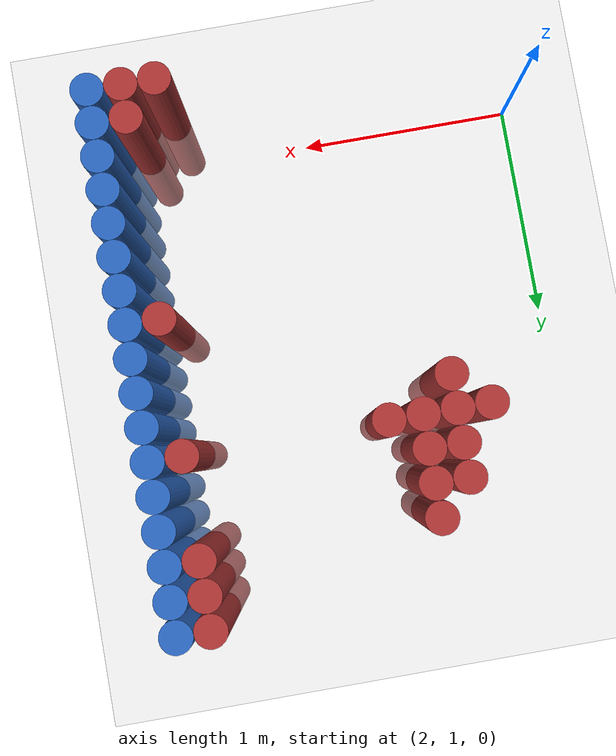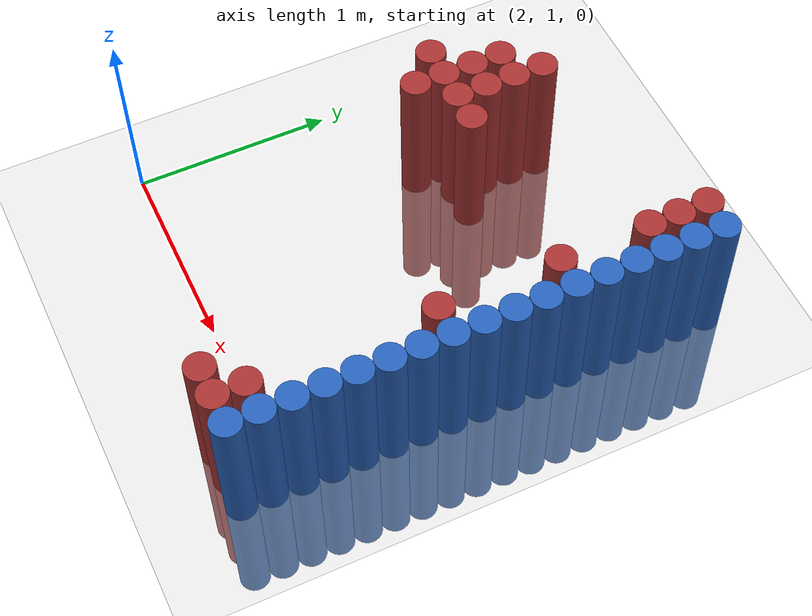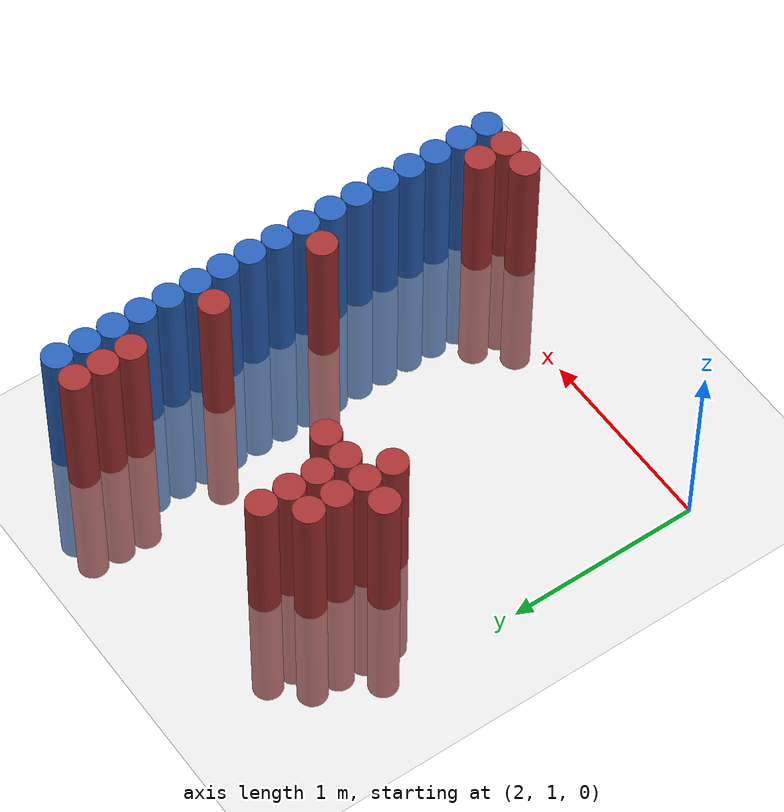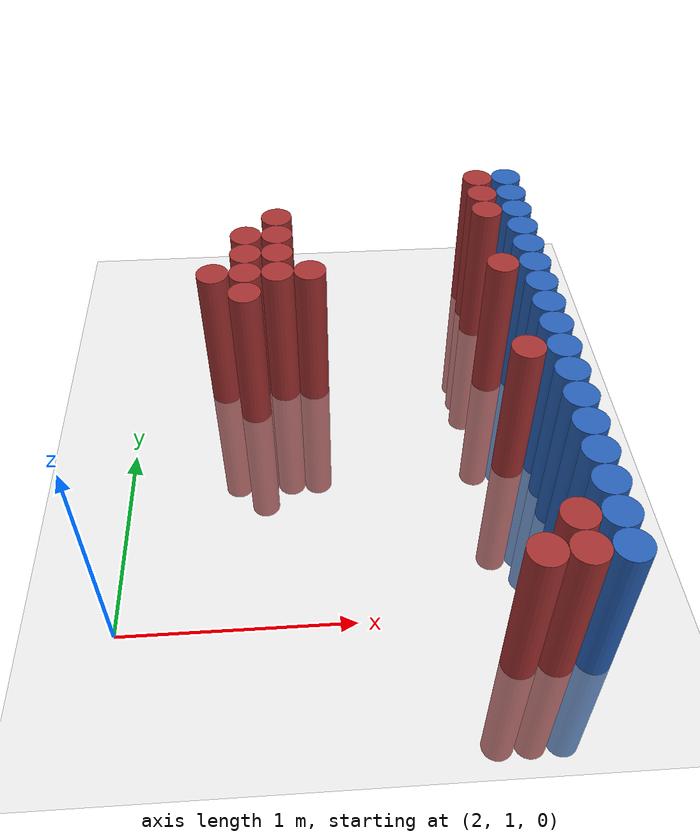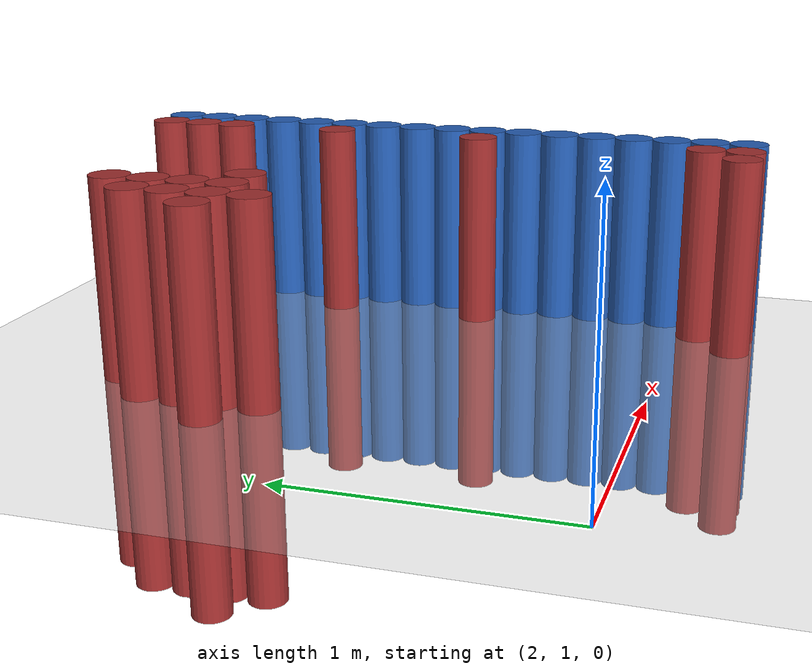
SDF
<sdf version="1.6">
 <world name="default">
  <model name="ground_plane">
   <static>1</static>
   <link name="link">
    <collision name="collision">
     <geometry><plane><normal>0 0 1</normal><size>100 100</size></plane></geometry>
     <surface><friction><ode><mu>100</mu><mu2>50</mu2></ode></friction></surface>
    </collision>
    <visual name="visual">
     <cast_shadows>0</cast_shadows>
     <geometry><plane><normal>0 0 1</normal><size>100 100</size></plane></geometry>
     <material>
      <script><uri>file://media/materials/scripts/gazebo.material</uri><name>Gazebo/Grey</name></script>
     </material>
    </visual>
   </link>
  </model>
  <model name="unit_cylinder_126">
   <static>1</static>
   <pose>3.925000 0.925000 0.000000 0.000000 0.000000 0.000000</pose>
   <link name="link">
    <inertial>
     <mass>1</mass>
     <inertia><ixx>0.145833</ixx><ixy>0</ixy><ixz>0</ixz><iyy>0.145833</iyy><iyz>0</iyz><izz>0.125</izz></inertia>
    </inertial>
    <collision name="collision">
     <geometry><cylinder><radius>0.075000</radius><length>1.5</length></cylinder></geometry>
    </collision>
    <visual name="visual">
     <geometry><cylinder><radius>0.075000</radius><length>1.5</length></cylinder></geometry>
     <material>
      <ambient>0.152000 0.379000 0.720000 1</ambient>
      <diffuse>0.152000 0.379000 0.720000 1</diffuse>
     </material>
     <material>
      <script><name>Gazebo/Grey</name><uri>file://media/materials/scripts/gazebo.material</uri></script>
     </material>
    </visual>
   </link>
  </model>
  <model name="unit_cylinder_128">
   <static>1</static>
   <pose>3.925000 1.075000 0.000000 0.000000 0.000000 0.000000</pose>
   <link name="link">
    <inertial>
     <mass>1</mass>
     <inertia><ixx>0.145833</ixx><ixy>0</ixy><ixz>0</ixz><iyy>0.145833</iyy><iyz>0</iyz><izz>0.125</izz></inertia>
    </inertial>
    <collision name="collision">
     <geometry><cylinder><radius>0.075000</radius><length>1.5</length></cylinder></geometry>
    </collision>
    <visual name="visual">
     <geometry><cylinder><radius>0.075000</radius><length>1.5</length></cylinder></geometry>
     <material>
      <ambient>0.152000 0.379000 0.720000 1</ambient>
      <diffuse>0.152000 0.379000 0.720000 1</diffuse>
     </material>
     <material>
      <script><name>Gazebo/Grey</name><uri>file://media/materials/scripts/gazebo.material</uri></script>
     </material>
    </visual>
   </link>
  </model>
  <model name="unit_cylinder_130">
   <static>1</static>
   <pose>3.925000 1.225000 0.000000 0.000000 0.000000 0.000000</pose>
   <link name="link">
    <inertial>
     <mass>1</mass>
     <inertia><ixx>0.145833</ixx><ixy>0</ixy><ixz>0</ixz><iyy>0.145833</iyy><iyz>0</iyz><izz>0.125</izz></inertia>
    </inertial>
    <collision name="collision">
     <geometry><cylinder><radius>0.075000</radius><length>1.5</length></cylinder></geometry>
    </collision>
    <visual name="visual">
     <geometry><cylinder><radius>0.075000</radius><length>1.5</length></cylinder></geometry>
     <material>
      <ambient>0.152000 0.379000 0.720000 1</ambient>
      <diffuse>0.152000 0.379000 0.720000 1</diffuse>
     </material>
     <material>
      <script><name>Gazebo/Grey</name><uri>file://media/materials/scripts/gazebo.material</uri></script>
     </material>
    </visual>
   </link>
  </model>
  <model name="unit_cylinder_132">
   <static>1</static>
   <pose>3.925000 1.375000 0.000000 0.000000 0.000000 0.000000</pose>
   <link name="link">
    <inertial>
     <mass>1</mass>
     <inertia><ixx>0.145833</ixx><ixy>0</ixy><ixz>0</ixz><iyy>0.145833</iyy><iyz>0</iyz><izz>0.125</izz></inertia>
    </inertial>
    <collision name="collision">
     <geometry><cylinder><radius>0.075000</radius><length>1.5</length></cylinder></geometry>
    </collision>
    <visual name="visual">
     <geometry><cylinder><radius>0.075000</radius><length>1.5</length></cylinder></geometry>
     <material>
      <ambient>0.152000 0.379000 0.720000 1</ambient>
      <diffuse>0.152000 0.379000 0.720000 1</diffuse>
     </material>
     <material>
      <script><name>Gazebo/Grey</name><uri>file://media/materials/scripts/gazebo.material</uri></script>
     </material>
    </visual>
   </link>
  </model>
  <model name="unit_cylinder_134">
   <static>1</static>
   <pose>3.925000 1.525000 0.000000 0.000000 0.000000 0.000000</pose>
   <link name="link">
    <inertial>
     <mass>1</mass>
     <inertia><ixx>0.145833</ixx><ixy>0</ixy><ixz>0</ixz><iyy>0.145833</iyy><iyz>0</iyz><izz>0.125</izz></inertia>
    </inertial>
    <collision name="collision">
     <geometry><cylinder><radius>0.075000</radius><length>1.5</length></cylinder></geometry>
    </collision>
    <visual name="visual">
     <geometry><cylinder><radius>0.075000</radius><length>1.5</length></cylinder></geometry>
     <material>
      <ambient>0.152000 0.379000 0.720000 1</ambient>
      <diffuse>0.152000 0.379000 0.720000 1</diffuse>
     </material>
     <material>
      <script><name>Gazebo/Grey</name><uri>file://media/materials/scripts/gazebo.material</uri></script>
     </material>
    </visual>
   </link>
  </model>
  <model name="unit_cylinder_136">
   <static>1</static>
   <pose>3.925000 1.675000 0.000000 0.000000 0.000000 0.000000</pose>
   <link name="link">
    <inertial>
     <mass>1</mass>
     <inertia><ixx>0.145833</ixx><ixy>0</ixy><ixz>0</ixz><iyy>0.145833</iyy><iyz>0</iyz><izz>0.125</izz></inertia>
    </inertial>
    <collision name="collision">
     <geometry><cylinder><radius>0.075000</radius><length>1.5</length></cylinder></geometry>
    </collision>
    <visual name="visual">
     <geometry><cylinder><radius>0.075000</radius><length>1.5</length></cylinder></geometry>
     <material>
      <ambient>0.152000 0.379000 0.720000 1</ambient>
      <diffuse>0.152000 0.379000 0.720000 1</diffuse>
     </material>
     <material>
      <script><name>Gazebo/Grey</name><uri>file://media/materials/scripts/gazebo.material</uri></script>
     </material>
    </visual>
   </link>
  </model>
  <model name="unit_cylinder_138">
   <static>1</static>
   <pose>3.925000 1.825000 0.000000 0.000000 0.000000 0.000000</pose>
   <link name="link">
    <inertial>
     <mass>1</mass>
     <inertia><ixx>0.145833</ixx><ixy>0</ixy><ixz>0</ixz><iyy>0.145833</iyy><iyz>0</iyz><izz>0.125</izz></inertia>
    </inertial>
    <collision name="collision">
     <geometry><cylinder><radius>0.075000</radius><length>1.5</length></cylinder></geometry>
    </collision>
    <visual name="visual">
     <geometry><cylinder><radius>0.075000</radius><length>1.5</length></cylinder></geometry>
     <material>
      <ambient>0.152000 0.379000 0.720000 1</ambient>
      <diffuse>0.152000 0.379000 0.720000 1</diffuse>
     </material>
     <material>
      <script><name>Gazebo/Grey</name><uri>file://media/materials/scripts/gazebo.material</uri></script>
     </material>
    </visual>
   </link>
  </model>
  <model name="unit_cylinder_140">
   <static>1</static>
   <pose>3.925000 1.975000 0.000000 0.000000 0.000000 0.000000</pose>
   <link name="link">
    <inertial>
     <mass>1</mass>
     <inertia><ixx>0.145833</ixx><ixy>0</ixy><ixz>0</ixz><iyy>0.145833</iyy><iyz>0</iyz><izz>0.125</izz></inertia>
    </inertial>
    <collision name="collision">
     <geometry><cylinder><radius>0.075000</radius><length>1.5</length></cylinder></geometry>
    </collision>
    <visual name="visual">
     <geometry><cylinder><radius>0.075000</radius><length>1.5</length></cylinder></geometry>
     <material>
      <ambient>0.152000 0.379000 0.720000 1</ambient>
      <diffuse>0.152000 0.379000 0.720000 1</diffuse>
     </material>
     <material>
      <script><name>Gazebo/Grey</name><uri>file://media/materials/scripts/gazebo.material</uri></script>
     </material>
    </visual>
   </link>
  </model>
  <model name="unit_cylinder_142">
   <static>1</static>
   <pose>3.925000 2.125000 0.000000 0.000000 0.000000 0.000000</pose>
   <link name="link">
    <inertial>
     <mass>1</mass>
     <inertia><ixx>0.145833</ixx><ixy>0</ixy><ixz>0</ixz><iyy>0.145833</iyy><iyz>0</iyz><izz>0.125</izz></inertia>
    </inertial>
    <collision name="collision">
     <geometry><cylinder><radius>0.075000</radius><length>1.5</length></cylinder></geometry>
    </collision>
    <visual name="visual">
     <geometry><cylinder><radius>0.075000</radius><length>1.5</length></cylinder></geometry>
     <material>
      <ambient>0.152000 0.379000 0.720000 1</ambient>
      <diffuse>0.152000 0.379000 0.720000 1</diffuse>
     </material>
     <material>
      <script><name>Gazebo/Grey</name><uri>file://media/materials/scripts/gazebo.material</uri></script>
     </material>
    </visual>
   </link>
  </model>
  <model name="unit_cylinder_144">
   <static>1</static>
   <pose>3.925000 2.275000 0.000000 0.000000 0.000000 0.000000</pose>
   <link name="link">
    <inertial>
     <mass>1</mass>
     <inertia><ixx>0.145833</ixx><ixy>0</ixy><ixz>0</ixz><iyy>0.145833</iyy><iyz>0</iyz><izz>0.125</izz></inertia>
    </inertial>
    <collision name="collision">
     <geometry><cylinder><radius>0.075000</radius><length>1.5</length></cylinder></geometry>
    </collision>
    <visual name="visual">
     <geometry><cylinder><radius>0.075000</radius><length>1.5</length></cylinder></geometry>
     <material>
      <ambient>0.152000 0.379000 0.720000 1</ambient>
      <diffuse>0.152000 0.379000 0.720000 1</diffuse>
     </material>
     <material>
      <script><name>Gazebo/Grey</name><uri>file://media/materials/scripts/gazebo.material</uri></script>
     </material>
    </visual>
   </link>
  </model>
  <model name="unit_cylinder_146">
   <static>1</static>
   <pose>3.925000 2.425000 0.000000 0.000000 0.000000 0.000000</pose>
   <link name="link">
    <inertial>
     <mass>1</mass>
     <inertia><ixx>0.145833</ixx><ixy>0</ixy><ixz>0</ixz><iyy>0.145833</iyy><iyz>0</iyz><izz>0.125</izz></inertia>
    </inertial>
    <collision name="collision">
     <geometry><cylinder><radius>0.075000</radius><length>1.5</length></cylinder></geometry>
    </collision>
    <visual name="visual">
     <geometry><cylinder><radius>0.075000</radius><length>1.5</length></cylinder></geometry>
     <material>
      <ambient>0.152000 0.379000 0.720000 1</ambient>
      <diffuse>0.152000 0.379000 0.720000 1</diffuse>
     </material>
     <material>
      <script><name>Gazebo/Grey</name><uri>file://media/materials/scripts/gazebo.material</uri></script>
     </material>
    </visual>
   </link>
  </model>
  <model name="unit_cylinder_148">
   <static>1</static>
   <pose>3.925000 2.575000 0.000000 0.000000 0.000000 0.000000</pose>
   <link name="link">
    <inertial>
     <mass>1</mass>
     <inertia><ixx>0.145833</ixx><ixy>0</ixy><ixz>0</ixz><iyy>0.145833</iyy><iyz>0</iyz><izz>0.125</izz></inertia>
    </inertial>
    <collision name="collision">
     <geometry><cylinder><radius>0.075000</radius><length>1.5</length></cylinder></geometry>
    </collision>
    <visual name="visual">
     <geometry><cylinder><radius>0.075000</radius><length>1.5</length></cylinder></geometry>
     <material>
      <ambient>0.152000 0.379000 0.720000 1</ambient>
      <diffuse>0.152000 0.379000 0.720000 1</diffuse>
     </material>
     <material>
      <script><name>Gazebo/Grey</name><uri>file://media/materials/scripts/gazebo.material</uri></script>
     </material>
    </visual>
   </link>
  </model>
  <model name="unit_cylinder_150">
   <static>1</static>
   <pose>3.925000 2.725000 0.000000 0.000000 0.000000 0.000000</pose>
   <link name="link">
    <inertial>
     <mass>1</mass>
     <inertia><ixx>0.145833</ixx><ixy>0</ixy><ixz>0</ixz><iyy>0.145833</iyy><iyz>0</iyz><izz>0.125</izz></inertia>
    </inertial>
    <collision name="collision">
     <geometry><cylinder><radius>0.075000</radius><length>1.5</length></cylinder></geometry>
    </collision>
    <visual name="visual">
     <geometry><cylinder><radius>0.075000</radius><length>1.5</length></cylinder></geometry>
     <material>
      <ambient>0.152000 0.379000 0.720000 1</ambient>
      <diffuse>0.152000 0.379000 0.720000 1</diffuse>
     </material>
     <material>
      <script><name>Gazebo/Grey</name><uri>file://media/materials/scripts/gazebo.material</uri></script>
     </material>
    </visual>
   </link>
  </model>
  <model name="unit_cylinder_152">
   <static>1</static>
   <pose>3.925000 2.875000 0.000000 0.000000 0.000000 0.000000</pose>
   <link name="link">
    <inertial>
     <mass>1</mass>
     <inertia><ixx>0.145833</ixx><ixy>0</ixy><ixz>0</ixz><iyy>0.145833</iyy><iyz>0</iyz><izz>0.125</izz></inertia>
    </inertial>
    <collision name="collision">
     <geometry><cylinder><radius>0.075000</radius><length>1.5</length></cylinder></geometry>
    </collision>
    <visual name="visual">
     <geometry><cylinder><radius>0.075000</radius><length>1.5</length></cylinder></geometry>
     <material>
      <ambient>0.152000 0.379000 0.720000 1</ambient>
      <diffuse>0.152000 0.379000 0.720000 1</diffuse>
     </material>
     <material>
      <script><name>Gazebo/Grey</name><uri>file://media/materials/scripts/gazebo.material</uri></script>
     </material>
    </visual>
   </link>
  </model>
  <model name="unit_cylinder_154">
   <static>1</static>
   <pose>3.925000 3.025000 0.000000 0.000000 0.000000 0.000000</pose>
   <link name="link">
    <inertial>
     <mass>1</mass>
     <inertia><ixx>0.145833</ixx><ixy>0</ixy><ixz>0</ixz><iyy>0.145833</iyy><iyz>0</iyz><izz>0.125</izz></inertia>
    </inertial>
    <collision name="collision">
     <geometry><cylinder><radius>0.075000</radius><length>1.5</length></cylinder></geometry>
    </collision>
    <visual name="visual">
     <geometry><cylinder><radius>0.075000</radius><length>1.5</length></cylinder></geometry>
     <material>
      <ambient>0.152000 0.379000 0.720000 1</ambient>
      <diffuse>0.152000 0.379000 0.720000 1</diffuse>
     </material>
     <material>
      <script><name>Gazebo/Grey</name><uri>file://media/materials/scripts/gazebo.material</uri></script>
     </material>
    </visual>
   </link>
  </model>
  <model name="unit_cylinder_156">
   <static>1</static>
   <pose>3.925000 3.175000 0.000000 0.000000 0.000000 0.000000</pose>
   <link name="link">
    <inertial>
     <mass>1</mass>
     <inertia><ixx>0.145833</ixx><ixy>0</ixy><ixz>0</ixz><iyy>0.145833</iyy><iyz>0</iyz><izz>0.125</izz></inertia>
    </inertial>
    <collision name="collision">
     <geometry><cylinder><radius>0.075000</radius><length>1.5</length></cylinder></geometry>
    </collision>
    <visual name="visual">
     <geometry><cylinder><radius>0.075000</radius><length>1.5</length></cylinder></geometry>
     <material>
      <ambient>0.152000 0.379000 0.720000 1</ambient>
      <diffuse>0.152000 0.379000 0.720000 1</diffuse>
     </material>
     <material>
      <script><name>Gazebo/Grey</name><uri>file://media/materials/scripts/gazebo.material</uri></script>
     </material>
    </visual>
   </link>
  </model>
  <model name="unit_cylinder_404">
   <static>1</static>
   <pose>2.425000 2.425000 0.000000 0.000000 0.000000 0.000000</pose>
   <link name="link">
    <inertial>
     <mass>1</mass>
     <inertia><ixx>0.145833</ixx><ixy>0</ixy><ixz>0</ixz><iyy>0.145833</iyy><iyz>0</iyz><izz>0.125</izz></inertia>
    </inertial>
    <collision name="collision">
     <geometry><cylinder><radius>0.075000</radius><length>1.5</length></cylinder></geometry>
    </collision>
    <visual name="visual">
     <geometry><cylinder><radius>0.075000</radius><length>1.5</length></cylinder></geometry>
     <material>
      <ambient>0.648000 0.192000 0.192000 1</ambient>
      <diffuse>0.648000 0.192000 0.192000 1</diffuse>
     </material>
     <material>
      <script><name>Gazebo/Grey</name><uri>file://media/materials/scripts/gazebo.material</uri></script>
     </material>
    </visual>
   </link>
  </model>
  <model name="unit_cylinder_405">
   <static>1</static>
   <pose>2.575000 2.275000 0.000000 0.000000 0.000000 0.000000</pose>
   <link name="link">
    <inertial>
     <mass>1</mass>
     <inertia><ixx>0.145833</ixx><ixy>0</ixy><ixz>0</ixz><iyy>0.145833</iyy><iyz>0</iyz><izz>0.125</izz></inertia>
    </inertial>
    <collision name="collision">
     <geometry><cylinder><radius>0.075000</radius><length>1.5</length></cylinder></geometry>
    </collision>
    <visual name="visual">
     <geometry><cylinder><radius>0.075000</radius><length>1.5</length></cylinder></geometry>
     <material>
      <ambient>0.648000 0.192000 0.192000 1</ambient>
      <diffuse>0.648000 0.192000 0.192000 1</diffuse>
     </material>
     <material>
      <script><name>Gazebo/Grey</name><uri>file://media/materials/scripts/gazebo.material</uri></script>
     </material>
    </visual>
   </link>
  </model>
  <model name="unit_cylinder_406">
   <static>1</static>
   <pose>2.575000 2.425000 0.000000 0.000000 0.000000 0.000000</pose>
   <link name="link">
    <inertial>
     <mass>1</mass>
     <inertia><ixx>0.145833</ixx><ixy>0</ixy><ixz>0</ixz><iyy>0.145833</iyy><iyz>0</iyz><izz>0.125</izz></inertia>
    </inertial>
    <collision name="collision">
     <geometry><cylinder><radius>0.075000</radius><length>1.5</length></cylinder></geometry>
    </collision>
    <visual name="visual">
     <geometry><cylinder><radius>0.075000</radius><length>1.5</length></cylinder></geometry>
     <material>
      <ambient>0.648000 0.192000 0.192000 1</ambient>
      <diffuse>0.648000 0.192000 0.192000 1</diffuse>
     </material>
     <material>
      <script><name>Gazebo/Grey</name><uri>file://media/materials/scripts/gazebo.material</uri></script>
     </material>
    </visual>
   </link>
  </model>
  <model name="unit_cylinder_407">
   <static>1</static>
   <pose>2.575000 2.575000 0.000000 0.000000 0.000000 0.000000</pose>
   <link name="link">
    <inertial>
     <mass>1</mass>
     <inertia><ixx>0.145833</ixx><ixy>0</ixy><ixz>0</ixz><iyy>0.145833</iyy><iyz>0</iyz><izz>0.125</izz></inertia>
    </inertial>
    <collision name="collision">
     <geometry><cylinder><radius>0.075000</radius><length>1.5</length></cylinder></geometry>
    </collision>
    <visual name="visual">
     <geometry><cylinder><radius>0.075000</radius><length>1.5</length></cylinder></geometry>
     <material>
      <ambient>0.648000 0.192000 0.192000 1</ambient>
      <diffuse>0.648000 0.192000 0.192000 1</diffuse>
     </material>
     <material>
      <script><name>Gazebo/Grey</name><uri>file://media/materials/scripts/gazebo.material</uri></script>
     </material>
    </visual>
   </link>
  </model>
  <model name="unit_cylinder_408">
   <static>1</static>
   <pose>2.575000 2.725000 0.000000 0.000000 0.000000 0.000000</pose>
   <link name="link">
    <inertial>
     <mass>1</mass>
     <inertia><ixx>0.145833</ixx><ixy>0</ixy><ixz>0</ixz><iyy>0.145833</iyy><iyz>0</iyz><izz>0.125</izz></inertia>
    </inertial>
    <collision name="collision">
     <geometry><cylinder><radius>0.075000</radius><length>1.5</length></cylinder></geometry>
    </collision>
    <visual name="visual">
     <geometry><cylinder><radius>0.075000</radius><length>1.5</length></cylinder></geometry>
     <material>
      <ambient>0.648000 0.192000 0.192000 1</ambient>
      <diffuse>0.648000 0.192000 0.192000 1</diffuse>
     </material>
     <material>
      <script><name>Gazebo/Grey</name><uri>file://media/materials/scripts/gazebo.material</uri></script>
     </material>
    </visual>
   </link>
  </model>
  <model name="unit_cylinder_411">
   <static>1</static>
   <pose>2.725000 2.425000 0.000000 0.000000 0.000000 0.000000</pose>
   <link name="link">
    <inertial>
     <mass>1</mass>
     <inertia><ixx>0.145833</ixx><ixy>0</ixy><ixz>0</ixz><iyy>0.145833</iyy><iyz>0</iyz><izz>0.125</izz></inertia>
    </inertial>
    <collision name="collision">
     <geometry><cylinder><radius>0.075000</radius><length>1.5</length></cylinder></geometry>
    </collision>
    <visual name="visual">
     <geometry><cylinder><radius>0.075000</radius><length>1.5</length></cylinder></geometry>
     <material>
      <ambient>0.648000 0.192000 0.192000 1</ambient>
      <diffuse>0.648000 0.192000 0.192000 1</diffuse>
     </material>
     <material>
      <script><name>Gazebo/Grey</name><uri>file://media/materials/scripts/gazebo.material</uri></script>
     </material>
    </visual>
   </link>
  </model>
  <model name="unit_cylinder_412">
   <static>1</static>
   <pose>2.725000 2.575000 0.000000 0.000000 0.000000 0.000000</pose>
   <link name="link">
    <inertial>
     <mass>1</mass>
     <inertia><ixx>0.145833</ixx><ixy>0</ixy><ixz>0</ixz><iyy>0.145833</iyy><iyz>0</iyz><izz>0.125</izz></inertia>
    </inertial>
    <collision name="collision">
     <geometry><cylinder><radius>0.075000</radius><length>1.5</length></cylinder></geometry>
    </collision>
    <visual name="visual">
     <geometry><cylinder><radius>0.075000</radius><length>1.5</length></cylinder></geometry>
     <material>
      <ambient>0.648000 0.192000 0.192000 1</ambient>
      <diffuse>0.648000 0.192000 0.192000 1</diffuse>
     </material>
     <material>
      <script><name>Gazebo/Grey</name><uri>file://media/materials/scripts/gazebo.material</uri></script>
     </material>
    </visual>
   </link>
  </model>
  <model name="unit_cylinder_413">
   <static>1</static>
   <pose>2.725000 2.725000 0.000000 0.000000 0.000000 0.000000</pose>
   <link name="link">
    <inertial>
     <mass>1</mass>
     <inertia><ixx>0.145833</ixx><ixy>0</ixy><ixz>0</ixz><iyy>0.145833</iyy><iyz>0</iyz><izz>0.125</izz></inertia>
    </inertial>
    <collision name="collision">
     <geometry><cylinder><radius>0.075000</radius><length>1.5</length></cylinder></geometry>
    </collision>
    <visual name="visual">
     <geometry><cylinder><radius>0.075000</radius><length>1.5</length></cylinder></geometry>
     <material>
      <ambient>0.648000 0.192000 0.192000 1</ambient>
      <diffuse>0.648000 0.192000 0.192000 1</diffuse>
     </material>
     <material>
      <script><name>Gazebo/Grey</name><uri>file://media/materials/scripts/gazebo.material</uri></script>
     </material>
    </visual>
   </link>
  </model>
  <model name="unit_cylinder_414">
   <static>1</static>
   <pose>2.725000 2.875000 0.000000 0.000000 0.000000 0.000000</pose>
   <link name="link">
    <inertial>
     <mass>1</mass>
     <inertia><ixx>0.145833</ixx><ixy>0</ixy><ixz>0</ixz><iyy>0.145833</iyy><iyz>0</iyz><izz>0.125</izz></inertia>
    </inertial>
    <collision name="collision">
     <geometry><cylinder><radius>0.075000</radius><length>1.5</length></cylinder></geometry>
    </collision>
    <visual name="visual">
     <geometry><cylinder><radius>0.075000</radius><length>1.5</length></cylinder></geometry>
     <material>
      <ambient>0.648000 0.192000 0.192000 1</ambient>
      <diffuse>0.648000 0.192000 0.192000 1</diffuse>
     </material>
     <material>
      <script><name>Gazebo/Grey</name><uri>file://media/materials/scripts/gazebo.material</uri></script>
     </material>
    </visual>
   </link>
  </model>
  <model name="unit_cylinder_419">
   <static>1</static>
   <pose>2.875000 2.425000 0.000000 0.000000 0.000000 0.000000</pose>
   <link name="link">
    <inertial>
     <mass>1</mass>
     <inertia><ixx>0.145833</ixx><ixy>0</ixy><ixz>0</ixz><iyy>0.145833</iyy><iyz>0</iyz><izz>0.125</izz></inertia>
    </inertial>
    <collision name="collision">
     <geometry><cylinder><radius>0.075000</radius><length>1.5</length></cylinder></geometry>
    </collision>
    <visual name="visual">
     <geometry><cylinder><radius>0.075000</radius><length>1.5</length></cylinder></geometry>
     <material>
      <ambient>0.648000 0.192000 0.192000 1</ambient>
      <diffuse>0.648000 0.192000 0.192000 1</diffuse>
     </material>
     <material>
      <script><name>Gazebo/Grey</name><uri>file://media/materials/scripts/gazebo.material</uri></script>
     </material>
    </visual>
   </link>
  </model>
  <model name="unit_cylinder_434">
   <static>1</static>
   <pose>3.625000 0.775000 0.000000 0.000000 0.000000 0.000000</pose>
   <link name="link">
    <inertial>
     <mass>1</mass>
     <inertia><ixx>0.145833</ixx><ixy>0</ixy><ixz>0</ixz><iyy>0.145833</iyy><iyz>0</iyz><izz>0.125</izz></inertia>
    </inertial>
    <collision name="collision">
     <geometry><cylinder><radius>0.075000</radius><length>1.5</length></cylinder></geometry>
    </collision>
    <visual name="visual">
     <geometry><cylinder><radius>0.075000</radius><length>1.5</length></cylinder></geometry>
     <material>
      <ambient>0.648000 0.192000 0.192000 1</ambient>
      <diffuse>0.648000 0.192000 0.192000 1</diffuse>
     </material>
     <material>
      <script><name>Gazebo/Grey</name><uri>file://media/materials/scripts/gazebo.material</uri></script>
     </material>
    </visual>
   </link>
  </model>
  <model name="unit_cylinder_447">
   <static>1</static>
   <pose>3.775000 0.775000 0.000000 0.000000 0.000000 0.000000</pose>
   <link name="link">
    <inertial>
     <mass>1</mass>
     <inertia><ixx>0.145833</ixx><ixy>0</ixy><ixz>0</ixz><iyy>0.145833</iyy><iyz>0</iyz><izz>0.125</izz></inertia>
    </inertial>
    <collision name="collision">
     <geometry><cylinder><radius>0.075000</radius><length>1.5</length></cylinder></geometry>
    </collision>
    <visual name="visual">
     <geometry><cylinder><radius>0.075000</radius><length>1.5</length></cylinder></geometry>
     <material>
      <ambient>0.648000 0.192000 0.192000 1</ambient>
      <diffuse>0.648000 0.192000 0.192000 1</diffuse>
     </material>
     <material>
      <script><name>Gazebo/Grey</name><uri>file://media/materials/scripts/gazebo.material</uri></script>
     </material>
    </visual>
   </link>
  </model>
  <model name="unit_cylinder_448">
   <static>1</static>
   <pose>3.775000 0.925000 0.000000 0.000000 0.000000 0.000000</pose>
   <link name="link">
    <inertial>
     <mass>1</mass>
     <inertia><ixx>0.145833</ixx><ixy>0</ixy><ixz>0</ixz><iyy>0.145833</iyy><iyz>0</iyz><izz>0.125</izz></inertia>
    </inertial>
    <collision name="collision">
     <geometry><cylinder><radius>0.075000</radius><length>1.5</length></cylinder></geometry>
    </collision>
    <visual name="visual">
     <geometry><cylinder><radius>0.075000</radius><length>1.5</length></cylinder></geometry>
     <material>
      <ambient>0.648000 0.192000 0.192000 1</ambient>
      <diffuse>0.648000 0.192000 0.192000 1</diffuse>
     </material>
     <material>
      <script><name>Gazebo/Grey</name><uri>file://media/materials/scripts/gazebo.material</uri></script>
     </material>
    </visual>
   </link>
  </model>
  <model name="unit_cylinder_449">
   <static>1</static>
   <pose>3.775000 1.825000 0.000000 0.000000 0.000000 0.000000</pose>
   <link name="link">
    <inertial>
     <mass>1</mass>
     <inertia><ixx>0.145833</ixx><ixy>0</ixy><ixz>0</ixz><iyy>0.145833</iyy><iyz>0</iyz><izz>0.125</izz></inertia>
    </inertial>
    <collision name="collision">
     <geometry><cylinder><radius>0.075000</radius><length>1.5</length></cylinder></geometry>
    </collision>
    <visual name="visual">
     <geometry><cylinder><radius>0.075000</radius><length>1.5</length></cylinder></geometry>
     <material>
      <ambient>0.648000 0.192000 0.192000 1</ambient>
      <diffuse>0.648000 0.192000 0.192000 1</diffuse>
     </material>
     <material>
      <script><name>Gazebo/Grey</name><uri>file://media/materials/scripts/gazebo.material</uri></script>
     </material>
    </visual>
   </link>
  </model>
  <model name="unit_cylinder_450">
   <static>1</static>
   <pose>3.775000 2.425000 0.000000 0.000000 0.000000 0.000000</pose>
   <link name="link">
    <inertial>
     <mass>1</mass>
     <inertia><ixx>0.145833</ixx><ixy>0</ixy><ixz>0</ixz><iyy>0.145833</iyy><iyz>0</iyz><izz>0.125</izz></inertia>
    </inertial>
    <collision name="collision">
     <geometry><cylinder><radius>0.075000</radius><length>1.5</length></cylinder></geometry>
    </collision>
    <visual name="visual">
     <geometry><cylinder><radius>0.075000</radius><length>1.5</length></cylinder></geometry>
     <material>
      <ambient>0.648000 0.192000 0.192000 1</ambient>
      <diffuse>0.648000 0.192000 0.192000 1</diffuse>
     </material>
     <material>
      <script><name>Gazebo/Grey</name><uri>file://media/materials/scripts/gazebo.material</uri></script>
     </material>
    </visual>
   </link>
  </model>
  <model name="unit_cylinder_451">
   <static>1</static>
   <pose>3.775000 2.875000 0.000000 0.000000 0.000000 0.000000</pose>
   <link name="link">
    <inertial>
     <mass>1</mass>
     <inertia><ixx>0.145833</ixx><ixy>0</ixy><ixz>0</ixz><iyy>0.145833</iyy><iyz>0</iyz><izz>0.125</izz></inertia>
    </inertial>
    <collision name="collision">
     <geometry><cylinder><radius>0.075000</radius><length>1.5</length></cylinder></geometry>
    </collision>
    <visual name="visual">
     <geometry><cylinder><radius>0.075000</radius><length>1.5</length></cylinder></geometry>
     <material>
      <ambient>0.648000 0.192000 0.192000 1</ambient>
      <diffuse>0.648000 0.192000 0.192000 1</diffuse>
     </material>
     <material>
      <script><name>Gazebo/Grey</name><uri>file://media/materials/scripts/gazebo.material</uri></script>
     </material>
    </visual>
   </link>
  </model>
  <model name="unit_cylinder_452">
   <static>1</static>
   <pose>3.775000 3.025000 0.000000 0.000000 0.000000 0.000000</pose>
   <link name="link">
    <inertial>
     <mass>1</mass>
     <inertia><ixx>0.145833</ixx><ixy>0</ixy><ixz>0</ixz><iyy>0.145833</iyy><iyz>0</iyz><izz>0.125</izz></inertia>
    </inertial>
    <collision name="collision">
     <geometry><cylinder><radius>0.075000</radius><length>1.5</length></cylinder></geometry>
    </collision>
    <visual name="visual">
     <geometry><cylinder><radius>0.075000</radius><length>1.5</length></cylinder></geometry>
     <material>
      <ambient>0.648000 0.192000 0.192000 1</ambient>
      <diffuse>0.648000 0.192000 0.192000 1</diffuse>
     </material>
     <material>
      <script><name>Gazebo/Grey</name><uri>file://media/materials/scripts/gazebo.material</uri></script>
     </material>
    </visual>
   </link>
  </model>
  <model name="unit_cylinder_453">
   <static>1</static>
   <pose>3.775000 3.175000 0.000000 0.000000 0.000000 0.000000</pose>
   <link name="link">
    <inertial>
     <mass>1</mass>
     <inertia><ixx>0.145833</ixx><ixy>0</ixy><ixz>0</ixz><iyy>0.145833</iyy><iyz>0</iyz><izz>0.125</izz></inertia>
    </inertial>
    <collision name="collision">
     <geometry><cylinder><radius>0.075000</radius><length>1.5</length></cylinder></geometry>
    </collision>
    <visual name="visual">
     <geometry><cylinder><radius>0.075000</radius><length>1.5</length></cylinder></geometry>
     <material>
      <ambient>0.648000 0.192000 0.192000 1</ambient>
      <diffuse>0.648000 0.192000 0.192000 1</diffuse>
     </material>
     <material>
      <script><name>Gazebo/Grey</name><uri>file://media/materials/scripts/gazebo.material</uri></script>
     </material>
    </visual>
   </link>
  </model>
  <model name="unit_cylinder_478">
   <static>1</static>
   <pose>3.925000 0.775000 0.000000 0.000000 0.000000 0.000000</pose>
   <link name="link">
    <inertial>
     <mass>1</mass>
     <inertia><ixx>0.145833</ixx><ixy>0</ixy><ixz>0</ixz><iyy>0.145833</iyy><iyz>0</iyz><izz>0.125</izz></inertia>
    </inertial>
    <collision name="collision">
     <geometry><cylinder><radius>0.075000</radius><length>1.5</length></cylinder></geometry>
    </collision>
    <visual name="visual">
     <geometry><cylinder><radius>0.075000</radius><length>1.5</length></cylinder></geometry>
     <material>
      <ambient>0.152000 0.379000 0.720000 1</ambient>
      <diffuse>0.152000 0.379000 0.720000 1</diffuse>
     </material>
     <material>
      <script><name>Gazebo/Grey</name><uri>file://media/materials/scripts/gazebo.material</uri></script>
     </material>
    </visual>
   </link>
  </model>
  <model name="unit_cylinder_479">
   <static>1</static>
   <pose>3.925000 0.925000 0.000000 0.000000 0.000000 0.000000</pose>
   <link name="link">
    <inertial>
     <mass>1</mass>
     <inertia><ixx>0.145833</ixx><ixy>0</ixy><ixz>0</ixz><iyy>0.145833</iyy><iyz>0</iyz><izz>0.125</izz></inertia>
    </inertial>
    <collision name="collision">
     <geometry><cylinder><radius>0.075000</radius><length>1.5</length></cylinder></geometry>
    </collision>
    <visual name="visual">
     <geometry><cylinder><radius>0.075000</radius><length>1.5</length></cylinder></geometry>
     <material>
      <ambient>0.152000 0.379000 0.720000 1</ambient>
      <diffuse>0.152000 0.379000 0.720000 1</diffuse>
     </material>
     <material>
      <script><name>Gazebo/Grey</name><uri>file://media/materials/scripts/gazebo.material</uri></script>
     </material>
    </visual>
   </link>
  </model>
  <model name="unit_cylinder_480">
   <static>1</static>
   <pose>3.925000 1.075000 0.000000 0.000000 0.000000 0.000000</pose>
   <link name="link">
    <inertial>
     <mass>1</mass>
     <inertia><ixx>0.145833</ixx><ixy>0</ixy><ixz>0</ixz><iyy>0.145833</iyy><iyz>0</iyz><izz>0.125</izz></inertia>
    </inertial>
    <collision name="collision">
     <geometry><cylinder><radius>0.075000</radius><length>1.5</length></cylinder></geometry>
    </collision>
    <visual name="visual">
     <geometry><cylinder><radius>0.075000</radius><length>1.5</length></cylinder></geometry>
     <material>
      <ambient>0.152000 0.379000 0.720000 1</ambient>
      <diffuse>0.152000 0.379000 0.720000 1</diffuse>
     </material>
     <material>
      <script><name>Gazebo/Grey</name><uri>file://media/materials/scripts/gazebo.material</uri></script>
     </material>
    </visual>
   </link>
  </model>
  <model name="unit_cylinder_481">
   <static>1</static>
   <pose>3.925000 1.225000 0.000000 0.000000 0.000000 0.000000</pose>
   <link name="link">
    <inertial>
     <mass>1</mass>
     <inertia><ixx>0.145833</ixx><ixy>0</ixy><ixz>0</ixz><iyy>0.145833</iyy><iyz>0</iyz><izz>0.125</izz></inertia>
    </inertial>
    <collision name="collision">
     <geometry><cylinder><radius>0.075000</radius><length>1.5</length></cylinder></geometry>
    </collision>
    <visual name="visual">
     <geometry><cylinder><radius>0.075000</radius><length>1.5</length></cylinder></geometry>
     <material>
      <ambient>0.152000 0.379000 0.720000 1</ambient>
      <diffuse>0.152000 0.379000 0.720000 1</diffuse>
     </material>
     <material>
      <script><name>Gazebo/Grey</name><uri>file://media/materials/scripts/gazebo.material</uri></script>
     </material>
    </visual>
   </link>
  </model>
  <model name="unit_cylinder_482">
   <static>1</static>
   <pose>3.925000 1.375000 0.000000 0.000000 0.000000 0.000000</pose>
   <link name="link">
    <inertial>
     <mass>1</mass>
     <inertia><ixx>0.145833</ixx><ixy>0</ixy><ixz>0</ixz><iyy>0.145833</iyy><iyz>0</iyz><izz>0.125</izz></inertia>
    </inertial>
    <collision name="collision">
     <geometry><cylinder><radius>0.075000</radius><length>1.5</length></cylinder></geometry>
    </collision>
    <visual name="visual">
     <geometry><cylinder><radius>0.075000</radius><length>1.5</length></cylinder></geometry>
     <material>
      <ambient>0.152000 0.379000 0.720000 1</ambient>
      <diffuse>0.152000 0.379000 0.720000 1</diffuse>
     </material>
     <material>
      <script><name>Gazebo/Grey</name><uri>file://media/materials/scripts/gazebo.material</uri></script>
     </material>
    </visual>
   </link>
  </model>
  <model name="unit_cylinder_483">
   <static>1</static>
   <pose>3.925000 1.525000 0.000000 0.000000 0.000000 0.000000</pose>
   <link name="link">
    <inertial>
     <mass>1</mass>
     <inertia><ixx>0.145833</ixx><ixy>0</ixy><ixz>0</ixz><iyy>0.145833</iyy><iyz>0</iyz><izz>0.125</izz></inertia>
    </inertial>
    <collision name="collision">
     <geometry><cylinder><radius>0.075000</radius><length>1.5</length></cylinder></geometry>
    </collision>
    <visual name="visual">
     <geometry><cylinder><radius>0.075000</radius><length>1.5</length></cylinder></geometry>
     <material>
      <ambient>0.152000 0.379000 0.720000 1</ambient>
      <diffuse>0.152000 0.379000 0.720000 1</diffuse>
     </material>
     <material>
      <script><name>Gazebo/Grey</name><uri>file://media/materials/scripts/gazebo.material</uri></script>
     </material>
    </visual>
   </link>
  </model>
  <model name="unit_cylinder_484">
   <static>1</static>
   <pose>3.925000 1.675000 0.000000 0.000000 0.000000 0.000000</pose>
   <link name="link">
    <inertial>
     <mass>1</mass>
     <inertia><ixx>0.145833</ixx><ixy>0</ixy><ixz>0</ixz><iyy>0.145833</iyy><iyz>0</iyz><izz>0.125</izz></inertia>
    </inertial>
    <collision name="collision">
     <geometry><cylinder><radius>0.075000</radius><length>1.5</length></cylinder></geometry>
    </collision>
    <visual name="visual">
     <geometry><cylinder><radius>0.075000</radius><length>1.5</length></cylinder></geometry>
     <material>
      <ambient>0.152000 0.379000 0.720000 1</ambient>
      <diffuse>0.152000 0.379000 0.720000 1</diffuse>
     </material>
     <material>
      <script><name>Gazebo/Grey</name><uri>file://media/materials/scripts/gazebo.material</uri></script>
     </material>
    </visual>
   </link>
  </model>
  <model name="unit_cylinder_485">
   <static>1</static>
   <pose>3.925000 1.825000 0.000000 0.000000 0.000000 0.000000</pose>
   <link name="link">
    <inertial>
     <mass>1</mass>
     <inertia><ixx>0.145833</ixx><ixy>0</ixy><ixz>0</ixz><iyy>0.145833</iyy><iyz>0</iyz><izz>0.125</izz></inertia>
    </inertial>
    <collision name="collision">
     <geometry><cylinder><radius>0.075000</radius><length>1.5</length></cylinder></geometry>
    </collision>
    <visual name="visual">
     <geometry><cylinder><radius>0.075000</radius><length>1.5</length></cylinder></geometry>
     <material>
      <ambient>0.152000 0.379000 0.720000 1</ambient>
      <diffuse>0.152000 0.379000 0.720000 1</diffuse>
     </material>
     <material>
      <script><name>Gazebo/Grey</name><uri>file://media/materials/scripts/gazebo.material</uri></script>
     </material>
    </visual>
   </link>
  </model>
  <model name="unit_cylinder_486">
   <static>1</static>
   <pose>3.925000 1.975000 0.000000 0.000000 0.000000 0.000000</pose>
   <link name="link">
    <inertial>
     <mass>1</mass>
     <inertia><ixx>0.145833</ixx><ixy>0</ixy><ixz>0</ixz><iyy>0.145833</iyy><iyz>0</iyz><izz>0.125</izz></inertia>
    </inertial>
    <collision name="collision">
     <geometry><cylinder><radius>0.075000</radius><length>1.5</length></cylinder></geometry>
    </collision>
    <visual name="visual">
     <geometry><cylinder><radius>0.075000</radius><length>1.5</length></cylinder></geometry>
     <material>
      <ambient>0.152000 0.379000 0.720000 1</ambient>
      <diffuse>0.152000 0.379000 0.720000 1</diffuse>
     </material>
     <material>
      <script><name>Gazebo/Grey</name><uri>file://media/materials/scripts/gazebo.material</uri></script>
     </material>
    </visual>
   </link>
  </model>
  <model name="unit_cylinder_487">
   <static>1</static>
   <pose>3.925000 2.125000 0.000000 0.000000 0.000000 0.000000</pose>
   <link name="link">
    <inertial>
     <mass>1</mass>
     <inertia><ixx>0.145833</ixx><ixy>0</ixy><ixz>0</ixz><iyy>0.145833</iyy><iyz>0</iyz><izz>0.125</izz></inertia>
    </inertial>
    <collision name="collision">
     <geometry><cylinder><radius>0.075000</radius><length>1.5</length></cylinder></geometry>
    </collision>
    <visual name="visual">
     <geometry><cylinder><radius>0.075000</radius><length>1.5</length></cylinder></geometry>
     <material>
      <ambient>0.152000 0.379000 0.720000 1</ambient>
      <diffuse>0.152000 0.379000 0.720000 1</diffuse>
     </material>
     <material>
      <script><name>Gazebo/Grey</name><uri>file://media/materials/scripts/gazebo.material</uri></script>
     </material>
    </visual>
   </link>
  </model>
  <model name="unit_cylinder_488">
   <static>1</static>
   <pose>3.925000 2.275000 0.000000 0.000000 0.000000 0.000000</pose>
   <link name="link">
    <inertial>
     <mass>1</mass>
     <inertia><ixx>0.145833</ixx><ixy>0</ixy><ixz>0</ixz><iyy>0.145833</iyy><iyz>0</iyz><izz>0.125</izz></inertia>
    </inertial>
    <collision name="collision">
     <geometry><cylinder><radius>0.075000</radius><length>1.5</length></cylinder></geometry>
    </collision>
    <visual name="visual">
     <geometry><cylinder><radius>0.075000</radius><length>1.5</length></cylinder></geometry>
     <material>
      <ambient>0.152000 0.379000 0.720000 1</ambient>
      <diffuse>0.152000 0.379000 0.720000 1</diffuse>
     </material>
     <material>
      <script><name>Gazebo/Grey</name><uri>file://media/materials/scripts/gazebo.material</uri></script>
     </material>
    </visual>
   </link>
  </model>
  <model name="unit_cylinder_489">
   <static>1</static>
   <pose>3.925000 2.425000 0.000000 0.000000 0.000000 0.000000</pose>
   <link name="link">
    <inertial>
     <mass>1</mass>
     <inertia><ixx>0.145833</ixx><ixy>0</ixy><ixz>0</ixz><iyy>0.145833</iyy><iyz>0</iyz><izz>0.125</izz></inertia>
    </inertial>
    <collision name="collision">
     <geometry><cylinder><radius>0.075000</radius><length>1.5</length></cylinder></geometry>
    </collision>
    <visual name="visual">
     <geometry><cylinder><radius>0.075000</radius><length>1.5</length></cylinder></geometry>
     <material>
      <ambient>0.152000 0.379000 0.720000 1</ambient>
      <diffuse>0.152000 0.379000 0.720000 1</diffuse>
     </material>
     <material>
      <script><name>Gazebo/Grey</name><uri>file://media/materials/scripts/gazebo.material</uri></script>
     </material>
    </visual>
   </link>
  </model>
  <model name="unit_cylinder_490">
   <static>1</static>
   <pose>3.925000 2.575000 0.000000 0.000000 0.000000 0.000000</pose>
   <link name="link">
    <inertial>
     <mass>1</mass>
     <inertia><ixx>0.145833</ixx><ixy>0</ixy><ixz>0</ixz><iyy>0.145833</iyy><iyz>0</iyz><izz>0.125</izz></inertia>
    </inertial>
    <collision name="collision">
     <geometry><cylinder><radius>0.075000</radius><length>1.5</length></cylinder></geometry>
    </collision>
    <visual name="visual">
     <geometry><cylinder><radius>0.075000</radius><length>1.5</length></cylinder></geometry>
     <material>
      <ambient>0.152000 0.379000 0.720000 1</ambient>
      <diffuse>0.152000 0.379000 0.720000 1</diffuse>
     </material>
     <material>
      <script><name>Gazebo/Grey</name><uri>file://media/materials/scripts/gazebo.material</uri></script>
     </material>
    </visual>
   </link>
  </model>
  <model name="unit_cylinder_491">
   <static>1</static>
   <pose>3.925000 2.725000 0.000000 0.000000 0.000000 0.000000</pose>
   <link name="link">
    <inertial>
     <mass>1</mass>
     <inertia><ixx>0.145833</ixx><ixy>0</ixy><ixz>0</ixz><iyy>0.145833</iyy><iyz>0</iyz><izz>0.125</izz></inertia>
    </inertial>
    <collision name="collision">
     <geometry><cylinder><radius>0.075000</radius><length>1.5</length></cylinder></geometry>
    </collision>
    <visual name="visual">
     <geometry><cylinder><radius>0.075000</radius><length>1.5</length></cylinder></geometry>
     <material>
      <ambient>0.152000 0.379000 0.720000 1</ambient>
      <diffuse>0.152000 0.379000 0.720000 1</diffuse>
     </material>
     <material>
      <script><name>Gazebo/Grey</name><uri>file://media/materials/scripts/gazebo.material</uri></script>
     </material>
    </visual>
   </link>
  </model>
  <model name="unit_cylinder_492">
   <static>1</static>
   <pose>3.925000 2.875000 0.000000 0.000000 0.000000 0.000000</pose>
   <link name="link">
    <inertial>
     <mass>1</mass>
     <inertia><ixx>0.145833</ixx><ixy>0</ixy><ixz>0</ixz><iyy>0.145833</iyy><iyz>0</iyz><izz>0.125</izz></inertia>
    </inertial>
    <collision name="collision">
     <geometry><cylinder><radius>0.075000</radius><length>1.5</length></cylinder></geometry>
    </collision>
    <visual name="visual">
     <geometry><cylinder><radius>0.075000</radius><length>1.5</length></cylinder></geometry>
     <material>
      <ambient>0.152000 0.379000 0.720000 1</ambient>
      <diffuse>0.152000 0.379000 0.720000 1</diffuse>
     </material>
     <material>
      <script><name>Gazebo/Grey</name><uri>file://media/materials/scripts/gazebo.material</uri></script>
     </material>
    </visual>
   </link>
  </model>
  <model name="unit_cylinder_493">
   <static>1</static>
   <pose>3.925000 3.025000 0.000000 0.000000 0.000000 0.000000</pose>
   <link name="link">
    <inertial>
     <mass>1</mass>
     <inertia><ixx>0.145833</ixx><ixy>0</ixy><ixz>0</ixz><iyy>0.145833</iyy><iyz>0</iyz><izz>0.125</izz></inertia>
    </inertial>
    <collision name="collision">
     <geometry><cylinder><radius>0.075000</radius><length>1.5</length></cylinder></geometry>
    </collision>
    <visual name="visual">
     <geometry><cylinder><radius>0.075000</radius><length>1.5</length></cylinder></geometry>
     <material>
      <ambient>0.152000 0.379000 0.720000 1</ambient>
      <diffuse>0.152000 0.379000 0.720000 1</diffuse>
     </material>
     <material>
      <script><name>Gazebo/Grey</name><uri>file://media/materials/scripts/gazebo.material</uri></script>
     </material>
    </visual>
   </link>
  </model>
  <model name="unit_cylinder_494">
   <static>1</static>
   <pose>3.925000 3.175000 0.000000 0.000000 0.000000 0.000000</pose>
   <link name="link">
    <inertial>
     <mass>1</mass>
     <inertia><ixx>0.145833</ixx><ixy>0</ixy><ixz>0</ixz><iyy>0.145833</iyy><iyz>0</iyz><izz>0.125</izz></inertia>
    </inertial>
    <collision name="collision">
     <geometry><cylinder><radius>0.075000</radius><length>1.5</length></cylinder></geometry>
    </collision>
    <visual name="visual">
     <geometry><cylinder><radius>0.075000</radius><length>1.5</length></cylinder></geometry>
     <material>
      <ambient>0.152000 0.379000 0.720000 1</ambient>
      <diffuse>0.152000 0.379000 0.720000 1</diffuse>
     </material>
     <material>
      <script><name>Gazebo/Grey</name><uri>file://media/materials/scripts/gazebo.material</uri></script>
     </material>
    </visual>
   </link>
  </model>
 </world>
</sdf>
